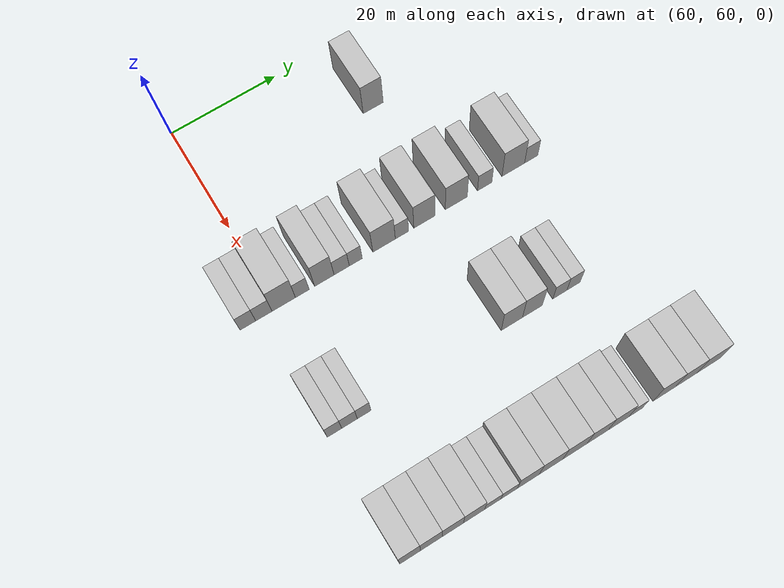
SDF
<sdf version="1.6">
 <world name="default">
  <model name="building_497">
   <static>1</static>
   <pose>69.0000 91.0168 0 0.000000 0.000000 0.000000</pose>
   <link name="link">
    <pose>0 0 4.50 0 0 0</pose>
    <collision name="collision"><geometry><box><size>10.0000 3.9289 9.0000</size></box></geometry></collision>
    <visual name="visual">
     <cast_shadows>0</cast_shadows>
     <geometry><box><size>10.0000 3.9289 9.0000</size></box></geometry>
     <material>
      <script>
       <uri>model://HANNAS_wall/materials/scripts</uri>
       <uri>model://HANNAS_wall/materials/textures</uri>
       <name>vrc/HANNAS_wall</name>
      </script>
     </material>
    </visual>
   </link>
  </model>
  <model name="building_681">
   <static>1</static>
   <pose>91.0000 54.5858 0 0.000000 0.000000 0.000000</pose>
   <link name="link">
    <pose>0 0 3.00 0 0 0</pose>
    <collision name="collision"><geometry><box><size>10.0000 2.8361 6.0000</size></box></geometry></collision>
    <visual name="visual">
     <cast_shadows>0</cast_shadows>
     <geometry><box><size>10.0000 2.8361 6.0000</size></box></geometry>
     <material>
      <script>
       <uri>model://HANNAS_wall/materials/scripts</uri>
       <uri>model://HANNAS_wall/materials/textures</uri>
       <name>vrc/HANNAS_wall</name>
      </script>
     </material>
    </visual>
   </link>
  </model>
  <model name="building_682">
   <static>1</static>
   <pose>91.0000 57.4837 0 0.000000 0.000000 0.000000</pose>
   <link name="link">
    <pose>0 0 3.00 0 0 0</pose>
    <collision name="collision"><geometry><box><size>10.0000 2.9597 6.0000</size></box></geometry></collision>
    <visual name="visual">
     <cast_shadows>0</cast_shadows>
     <geometry><box><size>10.0000 2.9597 6.0000</size></box></geometry>
     <material>
      <script>
       <uri>model://HANNAS_wall/materials/scripts</uri>
       <uri>model://HANNAS_wall/materials/textures</uri>
       <name>vrc/HANNAS_wall</name>
      </script>
     </material>
    </visual>
   </link>
  </model>
  <model name="building_683">
   <static>1</static>
   <pose>91.0000 61.1061 0 0.000000 0.000000 0.000000</pose>
   <link name="link">
    <pose>0 0 4.50 0 0 0</pose>
    <collision name="collision"><geometry><box><size>10.0000 4.2852 9.0000</size></box></geometry></collision>
    <visual name="visual">
     <cast_shadows>0</cast_shadows>
     <geometry><box><size>10.0000 4.2852 9.0000</size></box></geometry>
     <material>
      <script>
       <uri>model://HANNAS_wall/materials/scripts</uri>
       <uri>model://HANNAS_wall/materials/textures</uri>
       <name>vrc/HANNAS_wall</name>
      </script>
     </material>
    </visual>
   </link>
  </model>
  <model name="building_684">
   <static>1</static>
   <pose>91.0000 64.5122 0 0.000000 0.000000 0.000000</pose>
   <link name="link">
    <pose>0 0 3.00 0 0 0</pose>
    <collision name="collision"><geometry><box><size>10.0000 2.5269 6.0000</size></box></geometry></collision>
    <visual name="visual">
     <cast_shadows>0</cast_shadows>
     <geometry><box><size>10.0000 2.5269 6.0000</size></box></geometry>
     <material>
      <script>
       <uri>model://HANNAS_wall/materials/scripts</uri>
       <uri>model://HANNAS_wall/materials/textures</uri>
       <name>vrc/HANNAS_wall</name>
      </script>
     </material>
    </visual>
   </link>
  </model>
  <model name="building_685">
   <static>1</static>
   <pose>91.0000 68.5817 0 0.000000 0.000000 0.000000</pose>
   <link name="link">
    <pose>0 0 4.50 0 0 0</pose>
    <collision name="collision"><geometry><box><size>10.0000 3.6122 9.0000</size></box></geometry></collision>
    <visual name="visual">
     <cast_shadows>0</cast_shadows>
     <geometry><box><size>10.0000 3.6122 9.0000</size></box></geometry>
     <material>
      <script>
       <uri>model://HANNAS_wall/materials/scripts</uri>
       <uri>model://HANNAS_wall/materials/textures</uri>
       <name>vrc/HANNAS_wall</name>
      </script>
     </material>
    </visual>
   </link>
  </model>
  <model name="building_686">
   <static>1</static>
   <pose>91.0000 71.8080 0 0.000000 0.000000 0.000000</pose>
   <link name="link">
    <pose>0 0 3.00 0 0 0</pose>
    <collision name="collision"><geometry><box><size>10.0000 2.8403 6.0000</size></box></geometry></collision>
    <visual name="visual">
     <cast_shadows>0</cast_shadows>
     <geometry><box><size>10.0000 2.8403 6.0000</size></box></geometry>
     <material>
      <script>
       <uri>model://HANNAS_wall/materials/scripts</uri>
       <uri>model://HANNAS_wall/materials/textures</uri>
       <name>vrc/HANNAS_wall</name>
      </script>
     </material>
    </visual>
   </link>
  </model>
  <model name="building_687">
   <static>1</static>
   <pose>91.0000 74.4399 0 0.000000 0.000000 0.000000</pose>
   <link name="link">
    <pose>0 0 3.00 0 0 0</pose>
    <collision name="collision"><geometry><box><size>10.0000 2.4235 6.0000</size></box></geometry></collision>
    <visual name="visual">
     <cast_shadows>0</cast_shadows>
     <geometry><box><size>10.0000 2.4235 6.0000</size></box></geometry>
     <material>
      <script>
       <uri>model://HANNAS_wall/materials/scripts</uri>
       <uri>model://HANNAS_wall/materials/textures</uri>
       <name>vrc/HANNAS_wall</name>
      </script>
     </material>
    </visual>
   </link>
  </model>
  <model name="building_688">
   <static>1</static>
   <pose>91.0000 79.7769 0 0.000000 0.000000 0.000000</pose>
   <link name="link">
    <pose>0 0 4.50 0 0 0</pose>
    <collision name="collision"><geometry><box><size>10.0000 4.2504 9.0000</size></box></geometry></collision>
    <visual name="visual">
     <cast_shadows>0</cast_shadows>
     <geometry><box><size>10.0000 4.2504 9.0000</size></box></geometry>
     <material>
      <script>
       <uri>model://HANNAS_wall/materials/scripts</uri>
       <uri>model://HANNAS_wall/materials/textures</uri>
       <name>vrc/HANNAS_wall</name>
      </script>
     </material>
    </visual>
   </link>
  </model>
  <model name="building_689">
   <static>1</static>
   <pose>91.0000 83.1659 0 0.000000 0.000000 0.000000</pose>
   <link name="link">
    <pose>0 0 3.00 0 0 0</pose>
    <collision name="collision"><geometry><box><size>10.0000 2.5276 6.0000</size></box></geometry></collision>
    <visual name="visual">
     <cast_shadows>0</cast_shadows>
     <geometry><box><size>10.0000 2.5276 6.0000</size></box></geometry>
     <material>
      <script>
       <uri>model://HANNAS_wall/materials/scripts</uri>
       <uri>model://HANNAS_wall/materials/textures</uri>
       <name>vrc/HANNAS_wall</name>
      </script>
     </material>
    </visual>
   </link>
  </model>
  <model name="building_690">
   <static>1</static>
   <pose>91.0000 87.4501 0 0.000000 0.000000 0.000000</pose>
   <link name="link">
    <pose>0 0 4.50 0 0 0</pose>
    <collision name="collision"><geometry><box><size>10.0000 4.0409 9.0000</size></box></geometry></collision>
    <visual name="visual">
     <cast_shadows>0</cast_shadows>
     <geometry><box><size>10.0000 4.0409 9.0000</size></box></geometry>
     <material>
      <script>
       <uri>model://HANNAS_wall/materials/scripts</uri>
       <uri>model://HANNAS_wall/materials/textures</uri>
       <name>vrc/HANNAS_wall</name>
      </script>
     </material>
    </visual>
   </link>
  </model>
  <model name="building_691">
   <static>1</static>
   <pose>91.0000 93.5979 0 0.000000 0.000000 0.000000</pose>
   <link name="link">
    <pose>0 0 4.50 0 0 0</pose>
    <collision name="collision"><geometry><box><size>10.0000 4.2546 9.0000</size></box></geometry></collision>
    <visual name="visual">
     <cast_shadows>0</cast_shadows>
     <geometry><box><size>10.0000 4.2546 9.0000</size></box></geometry>
     <material>
      <script>
       <uri>model://HANNAS_wall/materials/scripts</uri>
       <uri>model://HANNAS_wall/materials/textures</uri>
       <name>vrc/HANNAS_wall</name>
      </script>
     </material>
    </visual>
   </link>
  </model>
  <model name="building_692">
   <static>1</static>
   <pose>91.0000 99.1298 0 0.000000 0.000000 0.000000</pose>
   <link name="link">
    <pose>0 0 3.00 0 0 0</pose>
    <collision name="collision"><geometry><box><size>10.0000 2.8091 6.0000</size></box></geometry></collision>
    <visual name="visual">
     <cast_shadows>0</cast_shadows>
     <geometry><box><size>10.0000 2.8091 6.0000</size></box></geometry>
     <material>
      <script>
       <uri>model://HANNAS_wall/materials/scripts</uri>
       <uri>model://HANNAS_wall/materials/textures</uri>
       <name>vrc/HANNAS_wall</name>
      </script>
     </material>
    </visual>
   </link>
  </model>
  <model name="building_693">
   <static>1</static>
   <pose>91.0000 104.7633 0 0.000000 0.000000 0.000000</pose>
   <link name="link">
    <pose>0 0 4.50 0 0 0</pose>
    <collision name="collision"><geometry><box><size>10.0000 4.4579 9.0000</size></box></geometry></collision>
    <visual name="visual">
     <cast_shadows>0</cast_shadows>
     <geometry><box><size>10.0000 4.4579 9.0000</size></box></geometry>
     <material>
      <script>
       <uri>model://HANNAS_wall/materials/scripts</uri>
       <uri>model://HANNAS_wall/materials/textures</uri>
       <name>vrc/HANNAS_wall</name>
      </script>
     </material>
    </visual>
   </link>
  </model>
  <model name="building_694">
   <static>1</static>
   <pose>91.0000 108.3071 0 0.000000 0.000000 0.000000</pose>
   <link name="link">
    <pose>0 0 3.00 0 0 0</pose>
    <collision name="collision"><geometry><box><size>10.0000 2.6297 6.0000</size></box></geometry></collision>
    <visual name="visual">
     <cast_shadows>0</cast_shadows>
     <geometry><box><size>10.0000 2.6297 6.0000</size></box></geometry>
     <material>
      <script>
       <uri>model://HANNAS_wall/materials/scripts</uri>
       <uri>model://HANNAS_wall/materials/textures</uri>
       <name>vrc/HANNAS_wall</name>
      </script>
     </material>
    </visual>
   </link>
  </model>
  <model name="building_869">
   <static>1</static>
   <pose>113.0000 57.4754 0 0.000000 0.000000 0.000000</pose>
   <link name="link">
    <pose>0 0 3.00 0 0 0</pose>
    <collision name="collision"><geometry><box><size>10.0000 2.5814 6.0000</size></box></geometry></collision>
    <visual name="visual">
     <cast_shadows>0</cast_shadows>
     <geometry><box><size>10.0000 2.5814 6.0000</size></box></geometry>
     <material>
      <script>
       <uri>model://HANNAS_wall/materials/scripts</uri>
       <uri>model://HANNAS_wall/materials/textures</uri>
       <name>vrc/HANNAS_wall</name>
      </script>
     </material>
    </visual>
   </link>
  </model>
  <model name="building_870">
   <static>1</static>
   <pose>113.0000 60.1615 0 0.000000 0.000000 0.000000</pose>
   <link name="link">
    <pose>0 0 3.00 0 0 0</pose>
    <collision name="collision"><geometry><box><size>10.0000 2.7909 6.0000</size></box></geometry></collision>
    <visual name="visual">
     <cast_shadows>0</cast_shadows>
     <geometry><box><size>10.0000 2.7909 6.0000</size></box></geometry>
     <material>
      <script>
       <uri>model://HANNAS_wall/materials/scripts</uri>
       <uri>model://HANNAS_wall/materials/textures</uri>
       <name>vrc/HANNAS_wall</name>
      </script>
     </material>
    </visual>
   </link>
  </model>
  <model name="building_871">
   <static>1</static>
   <pose>113.0000 62.7848 0 0.000000 0.000000 0.000000</pose>
   <link name="link">
    <pose>0 0 3.00 0 0 0</pose>
    <collision name="collision"><geometry><box><size>10.0000 2.4557 6.0000</size></box></geometry></collision>
    <visual name="visual">
     <cast_shadows>0</cast_shadows>
     <geometry><box><size>10.0000 2.4557 6.0000</size></box></geometry>
     <material>
      <script>
       <uri>model://HANNAS_wall/materials/scripts</uri>
       <uri>model://HANNAS_wall/materials/textures</uri>
       <name>vrc/HANNAS_wall</name>
      </script>
     </material>
    </visual>
   </link>
  </model>
  <model name="building_872">
   <static>1</static>
   <pose>113.0000 90.0183 0 0.000000 0.000000 0.000000</pose>
   <link name="link">
    <pose>0 0 4.50 0 0 0</pose>
    <collision name="collision"><geometry><box><size>10.0000 4.0038 9.0000</size></box></geometry></collision>
    <visual name="visual">
     <cast_shadows>0</cast_shadows>
     <geometry><box><size>10.0000 4.0038 9.0000</size></box></geometry>
     <material>
      <script>
       <uri>model://HANNAS_wall/materials/scripts</uri>
       <uri>model://HANNAS_wall/materials/textures</uri>
       <name>vrc/HANNAS_wall</name>
      </script>
     </material>
    </visual>
   </link>
  </model>
  <model name="building_873">
   <static>1</static>
   <pose>113.0000 93.9152 0 0.000000 0.000000 0.000000</pose>
   <link name="link">
    <pose>0 0 4.50 0 0 0</pose>
    <collision name="collision"><geometry><box><size>10.0000 3.7901 9.0000</size></box></geometry></collision>
    <visual name="visual">
     <cast_shadows>0</cast_shadows>
     <geometry><box><size>10.0000 3.7901 9.0000</size></box></geometry>
     <material>
      <script>
       <uri>model://HANNAS_wall/materials/scripts</uri>
       <uri>model://HANNAS_wall/materials/textures</uri>
       <name>vrc/HANNAS_wall</name>
      </script>
     </material>
    </visual>
   </link>
  </model>
  <model name="building_874">
   <static>1</static>
   <pose>113.0000 99.1634 0 0.000000 0.000000 0.000000</pose>
   <link name="link">
    <pose>0 0 3.00 0 0 0</pose>
    <collision name="collision"><geometry><box><size>10.0000 2.7064 6.0000</size></box></geometry></collision>
    <visual name="visual">
     <cast_shadows>0</cast_shadows>
     <geometry><box><size>10.0000 2.7064 6.0000</size></box></geometry>
     <material>
      <script>
       <uri>model://HANNAS_wall/materials/scripts</uri>
       <uri>model://HANNAS_wall/materials/textures</uri>
       <name>vrc/HANNAS_wall</name>
      </script>
     </material>
    </visual>
   </link>
  </model>
  <model name="building_875">
   <static>1</static>
   <pose>113.0000 101.8024 0 0.000000 0.000000 0.000000</pose>
   <link name="link">
    <pose>0 0 3.00 0 0 0</pose>
    <collision name="collision"><geometry><box><size>10.0000 2.5716 6.0000</size></box></geometry></collision>
    <visual name="visual">
     <cast_shadows>0</cast_shadows>
     <geometry><box><size>10.0000 2.5716 6.0000</size></box></geometry>
     <material>
      <script>
       <uri>model://HANNAS_wall/materials/scripts</uri>
       <uri>model://HANNAS_wall/materials/textures</uri>
       <name>vrc/HANNAS_wall</name>
      </script>
     </material>
    </visual>
   </link>
  </model>
  <model name="building_1050">
   <static>1</static>
   <pose>135.0000 57.5170 0 0.000000 0.000000 0.000000</pose>
   <link name="link">
    <pose>0 0 4.50 0 0 0</pose>
    <collision name="collision"><geometry><box><size>10.0000 3.6294 9.0000</size></box></geometry></collision>
    <visual name="visual">
     <cast_shadows>0</cast_shadows>
     <geometry><box><size>10.0000 3.6294 9.0000</size></box></geometry>
     <material>
      <script>
       <uri>model://HANNAS_wall/materials/scripts</uri>
       <uri>model://HANNAS_wall/materials/textures</uri>
       <name>vrc/HANNAS_wall</name>
      </script>
     </material>
    </visual>
   </link>
  </model>
  <model name="building_1051">
   <static>1</static>
   <pose>135.0000 61.2372 0 0.000000 0.000000 0.000000</pose>
   <link name="link">
    <pose>0 0 4.50 0 0 0</pose>
    <collision name="collision"><geometry><box><size>10.0000 3.8108 9.0000</size></box></geometry></collision>
    <visual name="visual">
     <cast_shadows>0</cast_shadows>
     <geometry><box><size>10.0000 3.8108 9.0000</size></box></geometry>
     <material>
      <script>
       <uri>model://HANNAS_wall/materials/scripts</uri>
       <uri>model://HANNAS_wall/materials/textures</uri>
       <name>vrc/HANNAS_wall</name>
      </script>
     </material>
    </visual>
   </link>
  </model>
  <model name="building_1052">
   <static>1</static>
   <pose>135.0000 65.0126 0 0.000000 0.000000 0.000000</pose>
   <link name="link">
    <pose>0 0 4.50 0 0 0</pose>
    <collision name="collision"><geometry><box><size>10.0000 3.7401 9.0000</size></box></geometry></collision>
    <visual name="visual">
     <cast_shadows>0</cast_shadows>
     <geometry><box><size>10.0000 3.7401 9.0000</size></box></geometry>
     <material>
      <script>
       <uri>model://HANNAS_wall/materials/scripts</uri>
       <uri>model://HANNAS_wall/materials/textures</uri>
       <name>vrc/HANNAS_wall</name>
      </script>
     </material>
    </visual>
   </link>
  </model>
  <model name="building_1053">
   <static>1</static>
   <pose>135.0000 68.7722 0 0.000000 0.000000 0.000000</pose>
   <link name="link">
    <pose>0 0 4.50 0 0 0</pose>
    <collision name="collision"><geometry><box><size>10.0000 3.7791 9.0000</size></box></geometry></collision>
    <visual name="visual">
     <cast_shadows>0</cast_shadows>
     <geometry><box><size>10.0000 3.7791 9.0000</size></box></geometry>
     <material>
      <script>
       <uri>model://HANNAS_wall/materials/scripts</uri>
       <uri>model://HANNAS_wall/materials/textures</uri>
       <name>vrc/HANNAS_wall</name>
      </script>
     </material>
    </visual>
   </link>
  </model>
  <model name="building_1054">
   <static>1</static>
   <pose>135.0000 72.1193 0 0.000000 0.000000 0.000000</pose>
   <link name="link">
    <pose>0 0 3.00 0 0 0</pose>
    <collision name="collision"><geometry><box><size>10.0000 2.9153 6.0000</size></box></geometry></collision>
    <visual name="visual">
     <cast_shadows>0</cast_shadows>
     <geometry><box><size>10.0000 2.9153 6.0000</size></box></geometry>
     <material>
      <script>
       <uri>model://HANNAS_wall/materials/scripts</uri>
       <uri>model://HANNAS_wall/materials/textures</uri>
       <name>vrc/HANNAS_wall</name>
      </script>
     </material>
    </visual>
   </link>
  </model>
  <model name="building_1055">
   <static>1</static>
   <pose>135.0000 75.0385 0 0.000000 0.000000 0.000000</pose>
   <link name="link">
    <pose>0 0 3.00 0 0 0</pose>
    <collision name="collision"><geometry><box><size>10.0000 2.9231 6.0000</size></box></geometry></collision>
    <visual name="visual">
     <cast_shadows>0</cast_shadows>
     <geometry><box><size>10.0000 2.9231 6.0000</size></box></geometry>
     <material>
      <script>
       <uri>model://HANNAS_wall/materials/scripts</uri>
       <uri>model://HANNAS_wall/materials/textures</uri>
       <name>vrc/HANNAS_wall</name>
      </script>
     </material>
    </visual>
   </link>
  </model>
  <model name="building_1056">
   <static>1</static>
   <pose>135.0000 78.4956 0 0.000000 0.000000 0.000000</pose>
   <link name="link">
    <pose>0 0 4.50 0 0 0</pose>
    <collision name="collision"><geometry><box><size>10.0000 3.9911 9.0000</size></box></geometry></collision>
    <visual name="visual">
     <cast_shadows>0</cast_shadows>
     <geometry><box><size>10.0000 3.9911 9.0000</size></box></geometry>
     <material>
      <script>
       <uri>model://HANNAS_wall/materials/scripts</uri>
       <uri>model://HANNAS_wall/materials/textures</uri>
       <name>vrc/HANNAS_wall</name>
      </script>
     </material>
    </visual>
   </link>
  </model>
  <model name="building_1057">
   <static>1</static>
   <pose>135.0000 82.6660 0 0.000000 0.000000 0.000000</pose>
   <link name="link">
    <pose>0 0 4.50 0 0 0</pose>
    <collision name="collision"><geometry><box><size>10.0000 4.3496 9.0000</size></box></geometry></collision>
    <visual name="visual">
     <cast_shadows>0</cast_shadows>
     <geometry><box><size>10.0000 4.3496 9.0000</size></box></geometry>
     <material>
      <script>
       <uri>model://HANNAS_wall/materials/scripts</uri>
       <uri>model://HANNAS_wall/materials/textures</uri>
       <name>vrc/HANNAS_wall</name>
      </script>
     </material>
    </visual>
   </link>
  </model>
  <model name="building_1058">
   <static>1</static>
   <pose>135.0000 87.0525 0 0.000000 0.000000 0.000000</pose>
   <link name="link">
    <pose>0 0 4.50 0 0 0</pose>
    <collision name="collision"><geometry><box><size>10.0000 4.4234 9.0000</size></box></geometry></collision>
    <visual name="visual">
     <cast_shadows>0</cast_shadows>
     <geometry><box><size>10.0000 4.4234 9.0000</size></box></geometry>
     <material>
      <script>
       <uri>model://HANNAS_wall/materials/scripts</uri>
       <uri>model://HANNAS_wall/materials/textures</uri>
       <name>vrc/HANNAS_wall</name>
      </script>
     </material>
    </visual>
   </link>
  </model>
  <model name="building_1059">
   <static>1</static>
   <pose>135.0000 91.2374 0 0.000000 0.000000 0.000000</pose>
   <link name="link">
    <pose>0 0 4.50 0 0 0</pose>
    <collision name="collision"><geometry><box><size>10.0000 3.9464 9.0000</size></box></geometry></collision>
    <visual name="visual">
     <cast_shadows>0</cast_shadows>
     <geometry><box><size>10.0000 3.9464 9.0000</size></box></geometry>
     <material>
      <script>
       <uri>model://HANNAS_wall/materials/scripts</uri>
       <uri>model://HANNAS_wall/materials/textures</uri>
       <name>vrc/HANNAS_wall</name>
      </script>
     </material>
    </visual>
   </link>
  </model>
  <model name="building_1060">
   <static>1</static>
   <pose>135.0000 95.1395 0 0.000000 0.000000 0.000000</pose>
   <link name="link">
    <pose>0 0 4.50 0 0 0</pose>
    <collision name="collision"><geometry><box><size>10.0000 3.8577 9.0000</size></box></geometry></collision>
    <visual name="visual">
     <cast_shadows>0</cast_shadows>
     <geometry><box><size>10.0000 3.8577 9.0000</size></box></geometry>
     <material>
      <script>
       <uri>model://HANNAS_wall/materials/scripts</uri>
       <uri>model://HANNAS_wall/materials/textures</uri>
       <name>vrc/HANNAS_wall</name>
      </script>
     </material>
    </visual>
   </link>
  </model>
  <model name="building_1061">
   <static>1</static>
   <pose>135.0000 98.3777 0 0.000000 0.000000 0.000000</pose>
   <link name="link">
    <pose>0 0 3.00 0 0 0</pose>
    <collision name="collision"><geometry><box><size>10.0000 2.6188 6.0000</size></box></geometry></collision>
    <visual name="visual">
     <cast_shadows>0</cast_shadows>
     <geometry><box><size>10.0000 2.6188 6.0000</size></box></geometry>
     <material>
      <script>
       <uri>model://HANNAS_wall/materials/scripts</uri>
       <uri>model://HANNAS_wall/materials/textures</uri>
       <name>vrc/HANNAS_wall</name>
      </script>
     </material>
    </visual>
   </link>
  </model>
  <model name="building_1062">
   <static>1</static>
   <pose>135.0000 103.8140 0 0.000000 0.000000 0.000000</pose>
   <link name="link">
    <pose>0 0 4.50 0 0 0</pose>
    <collision name="collision"><geometry><box><size>10.0000 4.2537 9.0000</size></box></geometry></collision>
    <visual name="visual">
     <cast_shadows>0</cast_shadows>
     <geometry><box><size>10.0000 4.2537 9.0000</size></box></geometry>
     <material>
      <script>
       <uri>model://HANNAS_wall/materials/scripts</uri>
       <uri>model://HANNAS_wall/materials/textures</uri>
       <name>vrc/HANNAS_wall</name>
      </script>
     </material>
    </visual>
   </link>
  </model>
  <model name="building_1063">
   <static>1</static>
   <pose>135.0000 107.9761 0 0.000000 0.000000 0.000000</pose>
   <link name="link">
    <pose>0 0 4.50 0 0 0</pose>
    <collision name="collision"><geometry><box><size>10.0000 4.0705 9.0000</size></box></geometry></collision>
    <visual name="visual">
     <cast_shadows>0</cast_shadows>
     <geometry><box><size>10.0000 4.0705 9.0000</size></box></geometry>
     <material>
      <script>
       <uri>model://HANNAS_wall/materials/scripts</uri>
       <uri>model://HANNAS_wall/materials/textures</uri>
       <name>vrc/HANNAS_wall</name>
      </script>
     </material>
    </visual>
   </link>
  </model>
  <model name="building_1064">
   <static>1</static>
   <pose>135.0000 112.2555 0 0.000000 0.000000 0.000000</pose>
   <link name="link">
    <pose>0 0 4.50 0 0 0</pose>
    <collision name="collision"><geometry><box><size>10.0000 4.4884 9.0000</size></box></geometry></collision>
    <visual name="visual">
     <cast_shadows>0</cast_shadows>
     <geometry><box><size>10.0000 4.4884 9.0000</size></box></geometry>
     <material>
      <script>
       <uri>model://HANNAS_wall/materials/scripts</uri>
       <uri>model://HANNAS_wall/materials/textures</uri>
       <name>vrc/HANNAS_wall</name>
      </script>
     </material>
    </visual>
   </link>
  </model>
 </world>
</sdf>
